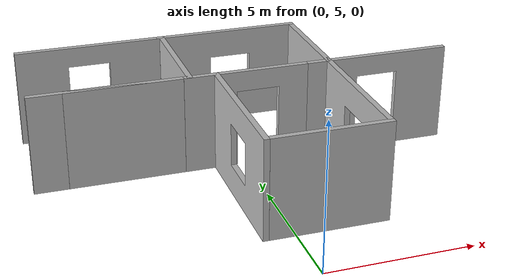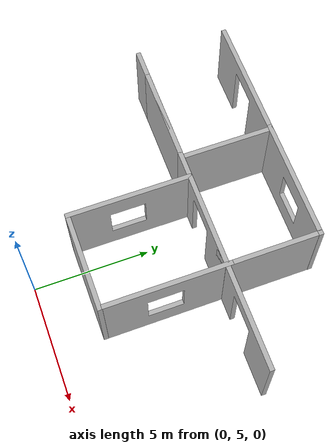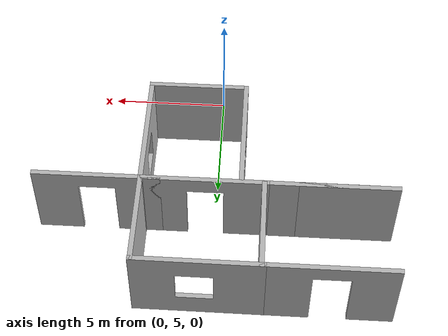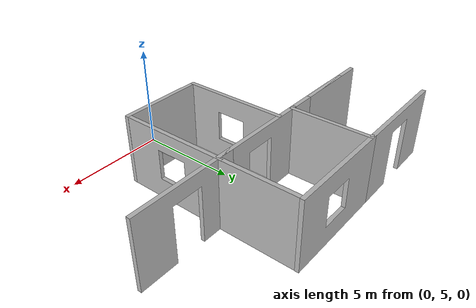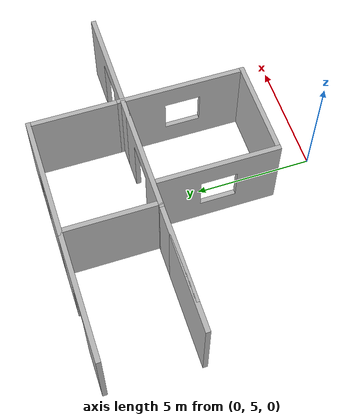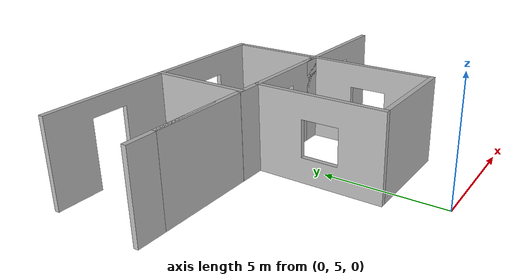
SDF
<sdf version="1.5">
 <world name="default">
  <include><uri>model://sun</uri></include>
  <include>
   <name>wall_w_win_1</name>
   <uri>model://house_scene_1_wall_w_window</uri>
   <static>true</static>
   <pose>10.196025 13.241871 0 0 0 1.567493</pose>
  </include>
  <include>
   <name>wall_w_win_2</name>
   <uri>model://house_scene_1_wall_w_window</uri>
   <static>true</static>
   <pose>0.083877 0.139949 0 0 0 0</pose>
  </include>
  <include>
   <name>wall_w_win_3</name>
   <uri>model://house_scene_1_wall_w_window</uri>
   <static>true</static>
   <pose>-3.983081 -0.035807 0 0 0 0</pose>
  </include>
  <include>
   <name>wall_w_door_1</name>
   <uri>model://house_scene_1_wall_w_door</uri>
   <static>true</static>
   <pose>-5.389788 -0.365987 0 0 0 0</pose>
  </include>
  <include>
   <name>wall_w_door_2</name>
   <uri>model://house_scene_1_wall_w_door</uri>
   <static>true</static>
   <pose>-0.273567 -4.274961 0 0 0 0</pose>
  </include>
  <include>
   <name>wall_w_door_3</name>
   <uri>model://house_scene_1_wall_w_door</uri>
   <static>true</static>
   <pose>4.144635 -4.274961 0 0 0 0</pose>
  </include>
  <include>
   <name>wall_1</name>
   <uri>model://house_scene_1_wall</uri>
   <static>true</static>
   <pose>0.995554 -5.340950 0 0 0 0</pose>
  </include>
  <include>
   <name>wall_2</name>
   <uri>model://house_scene_1_wall</uri>
   <static>true</static>
   <pose>-9.494801 14.293259 0 0 0 -1.570796</pose>
  </include>
  <include>
   <name>wall_3</name>
   <uri>model://house_scene_1_wall</uri>
   <static>true</static>
   <pose>-5.499550 -0.200163 0 0 0 0</pose>
  </include>
  <include>
   <name>wall_4</name>
   <uri>model://house_scene_1_wall</uri>
   <static>true</static>
   <pose>-4.311431 -0.201591 0 0 0 0</pose>
  </include>
  <include>
   <name>wall_5</name>
   <uri>model://house_scene_1_wall</uri>
   <static>true</static>
   <pose>10.494231 14.190661 0 0 0 1.570840</pose>
  </include>
 </world>
</sdf>

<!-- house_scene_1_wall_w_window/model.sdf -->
<sdf version="1.5">
    <model name="house3">
        <static>true</static>
        <link name="link">
            <collision name="collision1">
                <pose>0 12.5 0 0 0 0</pose>
                <geometry>
                    <mesh>
                        <uri>model://house_scene_1_wall_w_window/meshes/scene_1_wall_w_window.dae</uri>
                    </mesh>
                </geometry>
            </collision>
            <visual name="visual_walls3">
              <pose>0 12.5 0 0 0 0</pose>
              <geometry>
              <mesh>
                 <uri>model://house_scene_1_wall_w_window/meshes/scene_1_wall_w_window.dae</uri>
              </mesh>
              </geometry>
              <material>
                  <script>
                      <uri>model://house_scene_1_wall_w_window/materials/scripts</uri>
                      <uri>model://house_scene_1_wall_w_window/materials/textures</uri>
                      <name>houseMat/Diffuse</name>
                  </script>
              </material>
             </visual>

        </link>
    </model>
</sdf>

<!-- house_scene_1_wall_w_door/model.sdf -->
<sdf version="1.5">
    <model name="house2">
        <static>true</static>
        <link name="link">
            <collision name="collision1">
                <pose>0 12.5 0 0 0 0</pose>
                <geometry>
                    <mesh>
                        <uri>model://house_scene_1_wall_w_door/meshes/scene_1_wall_w_door.dae</uri>
                    </mesh>
                </geometry>
            </collision>
            <visual name="visual_walls2">
              <pose>0 12.5 0 0 0 0</pose>
              <geometry>
              <mesh>
                 <uri>model://house_scene_1_wall_w_door/meshes/scene_1_wall_w_door.dae</uri>
              </mesh>
              </geometry>
              <material>
                  <script>
                      <uri>model://house_scene_1_wall_w_door/materials/scripts</uri>
                      <uri>model://house_scene_1_wall_w_door/materials/textures</uri>
                      <name>houseMat/Diffuse</name>
                  </script>
              </material>
             </visual>

        </link>
    </model>
</sdf>

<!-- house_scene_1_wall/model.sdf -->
<sdf version="1.5">
    <model name="house1">
        <static>true</static>
        <link name="link">
            <collision name="collision1">
                <pose>0 12.5 0 0 0 0</pose>
                <geometry>
                    <mesh>
                        <uri>model://house_scene_1_wall/meshes/scene_1_wall.dae</uri>
                    </mesh>
                </geometry>
            </collision>
            <visual name="visual_walls1">
              <pose>0 12.5 0 0 0 0</pose>
              <geometry>
              <mesh>
                 <uri>model://house_scene_1_wall/meshes/scene_1_wall.dae</uri>
              </mesh>
              </geometry>
              <material>
                  <script>
                      <uri>model://house_scene_1_wall/materials/scripts</uri>
                      <uri>model://house_scene_1_wall/materials/textures</uri>
                      <name>houseMat/Diffuse</name>
                  </script>
              </material>
             </visual>

        </link>
    </model>
</sdf>
